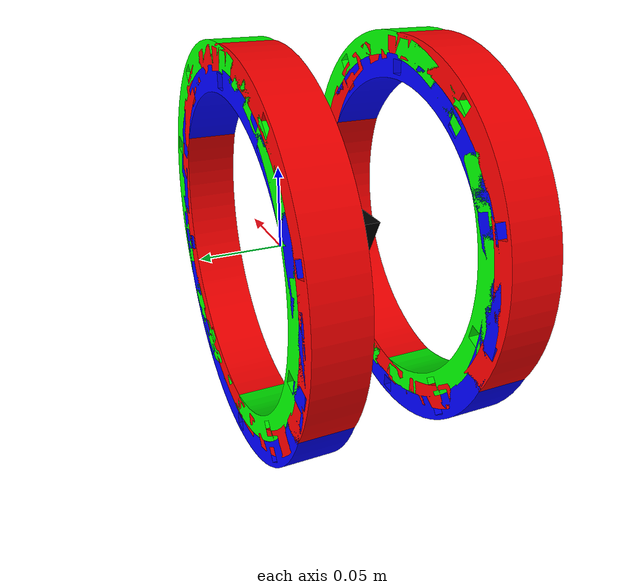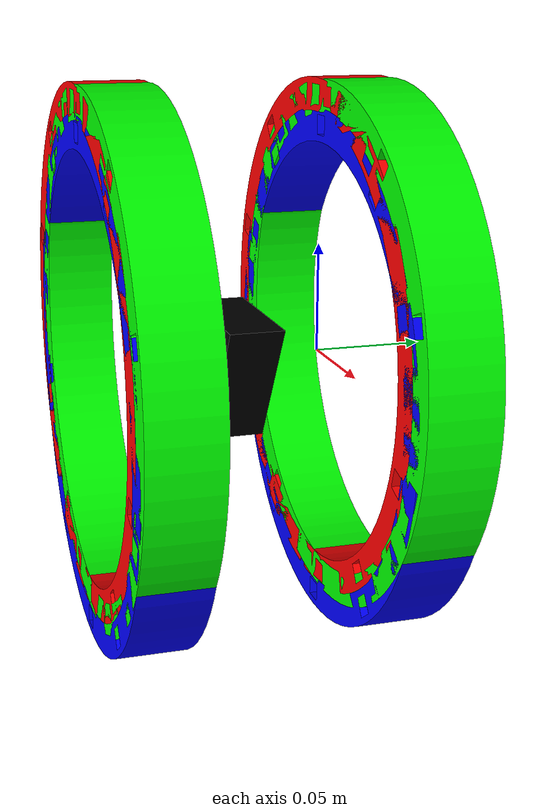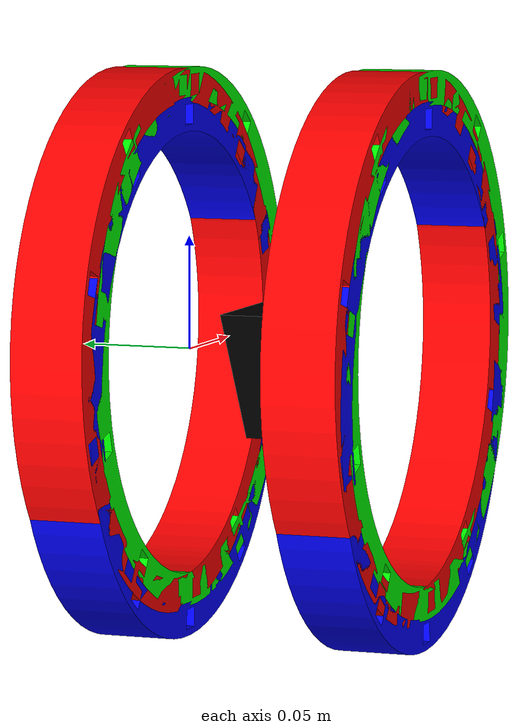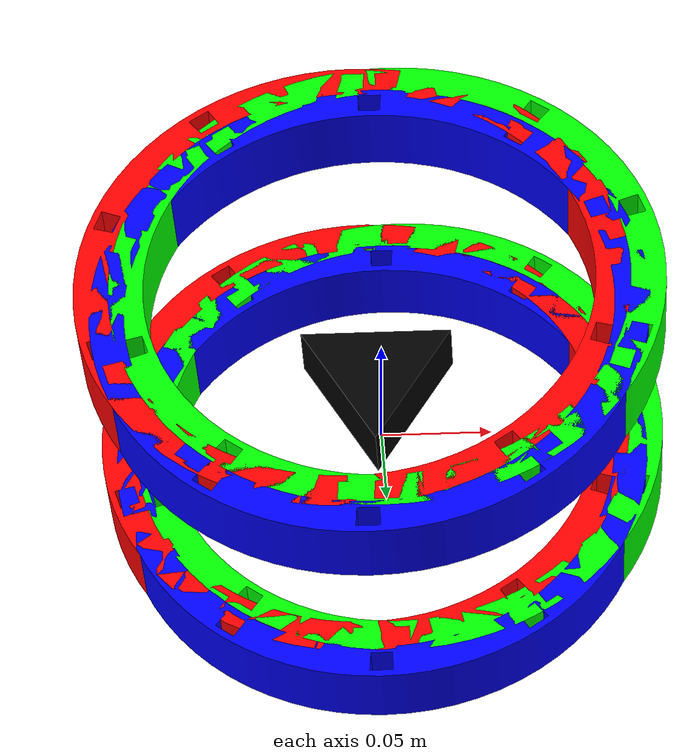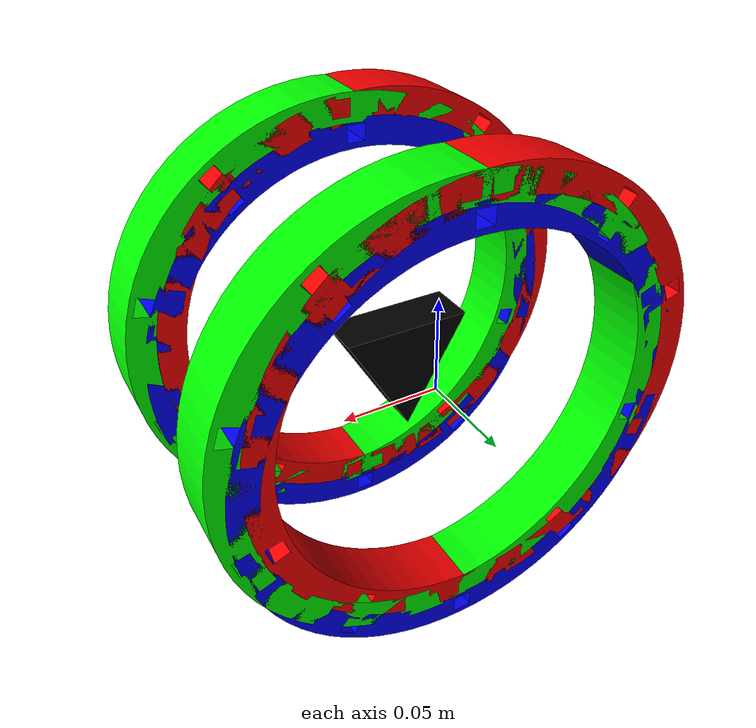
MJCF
<?xml version="1.0" ?>
<!-- Generated using onshape-to-robot -->
<!-- Onshape https://cad.onshape.com/documents/6ea4df2c2feb9d034b7d17e7/w/f7f81d80de76a46836fa4b60/e/3381f4ecc1cbedb8efeb0420 -->
<mujoco model="my-robot">
  <compiler angle="radian" meshdir="assets" autolimits="true"/>
  <default>
    <default class="my-robot">
      <joint frictionloss="0.2" armature="0.005"/>
      <default class="visual">
        <geom type="mesh" contype="0" conaffinity="0" group="2"/>
      </default>
      <default class="collision">
    <geom group="3" contype="0" conaffinity="1"/>
      </default>
    </default>
  </default>
  <worldbody>
    <!-- Link refrence -->
    <body name="refrence" pos="0 0 0" quat="1 0 0 0" childclass="my-robot">
      <freejoint name="refrence_freejoint"/>
      <inertial pos="0 0 0" mass="4.62243156" fullinertia="0.029 0.029 0.043 7.682e-5 2.262e-7 -5.775e-7"/>
      <!-- Part refrence -->
      <geom type="mesh" class="visual" pos="0.0489164 -0.0515 0.0282419" quat="1 0 0 0" mesh="refrence" material="refrence_material"/>
        <geom type="mesh" class="collision" pos="0.0489164 -0.0515 0.0282419" quat="1 0 0 0" mesh="refrence" material="refrence_material"/>
      <!-- Frame imu3 -->
      <site group="3" name="imu3" pos="-0.0025 0 -0.0862338" quat="0.707107 0 0 0.707107"/>
      <!-- Frame imu1 -->
      <site group="3" name="imu1" pos="-0.0734307 4.33681e-19 0.045282" quat="0.353553 0.612372 0.612372 0.353553"/>
      <!-- Frame imu2 -->
      <site group="3" name="imu2" pos="0.0759307 0 0.0409518" quat="0.353553 -0.612372 -0.612372 0.353553"/>
      <!-- Link fake_tread -->
      <body name="fake_tread" pos="-0.00757175 0 0.00437155" quat="0.707107 -0.707107 0 0">
        <!-- Joint from refrence to fake_tread -->
        <joint axis="0 0 1" name="rolly1" type="hinge"/>
        <inertial pos="0 0 0" mass="1e-09" fullinertia="1e-09 1e-09 1e-09 0 0 0"/>
        <!-- Part fake_tread -->
        <geom type="mesh" class="visual" pos="0.0564882 -0.0238704 0.032" quat="0.707107 0.707107 -0 -0" mesh="fake_tread" material="fake_tread_material"/>
        <geom type="mesh" class="collision" pos="0.0564882 -0.0238704 0.032" quat="0.707107 0.707107 -0 -0" mesh="fake_tread" material="fake_tread_material"/>
        <!-- Part fake_tread_2 -->
        <geom type="mesh" class="visual" pos="0.0564882 -0.0238704 -0.078" quat="0.707107 0.707107 -0 -0" mesh="fake_tread" material="fake_tread_material"/>
        <geom type="mesh" class="collision" pos="0.0564882 -0.0238704 -0.078" quat="0.707107 0.707107 -0 -0" mesh="fake_tread" material="fake_tread_material"/>
      </body>
            <!-- Link fake_tread_2 -->
      <body name="fake_tread_2" pos="0.00757175 0 0.00437155" quat="0.707107 -0.707107 0 0">
        <!-- Joint from refrence to fake_tread_2 -->
        <joint axis="0 0 1" name="rolly2" type="hinge"/>
        <inertial pos="0 0 0" mass="1e-09" fullinertia="1e-09 1e-09 1e-09 0 0 0"/>
        <!-- Part fake_tread_3 -->
        <geom type="mesh" class="visual" pos="0.0564882 -0.0238704 -0.078" quat="0.707107 0.707107 -0 -0" mesh="fake_tread" material="fake_tread_material1"/>
        <geom type="mesh" class="collision" pos="0.0564882 -0.0238704 -0.078" quat="0.707107 0.707107 -0 -0" mesh="fake_tread" material="fake_tread_material1"/>
        <!-- Part fake_tread_4 -->
        <geom type="mesh" class="visual" pos="0.0564882 -0.0238704 0.032" quat="0.707107 0.707107 -0 -0" mesh="fake_tread" material="fake_tread_material1"/>
        <geom type="mesh" class="collision" pos="0.0564882 -0.0238704 0.032" quat="0.707107 0.707107 -0 -0" mesh="fake_tread" material="fake_tread_material1"/>
      </body>
      <!-- Link fake_tread_3 -->
      <body name="fake_tread_3" pos="-4.85723e-17 0 -0.0087431" quat="0.707107 0.707107 -0 -0">
        <!-- Joint from refrence to fake_tread_3 -->
        <joint axis="0 0 -1" name="rolly3" type="hinge"/>
        <inertial pos="0 0 0" mass="1e-09" fullinertia="1e-09 1e-09 1e-09 0 0 0"/>
        <!-- Part fake_tread_5 -->
        <geom type="mesh" class="visual" pos="0.0564882 0.0238704 0.078" quat="0.707107 -0.707107 0 0" mesh="fake_tread" material="fake_tread_material2"/>
        <geom type="mesh" class="collision" pos="0.0564882 0.0238704 0.078" quat="0.707107 -0.707107 0 0" mesh="fake_tread" material="fake_tread_material2"/>
        <!-- Part fake_tread_6 -->
        <geom type="mesh" class="visual" pos="0.0564882 0.0238704 -0.032" quat="0.707107 -0.707107 0 0" mesh="fake_tread" material="fake_tread_material2"/>
        <geom type="mesh" class="collision" pos="0.0564882 0.0238704 -0.032" quat="0.707107 -0.707107 0 0" mesh="fake_tread" material="fake_tread_material2"/>
      </body>

    </body>
  </worldbody>
  <asset>
    <mesh file="refrence.stl"/>
    <mesh file="fake_tread.stl"/>
    <material name="refrence_material" rgba="0 0 0 1"/>
    <material name="fake_tread_material" rgba="1 0 0 1"/>
    <material name="fake_tread_material1" rgba="0 1 0 1"/>
    <material name="fake_tread_material2" rgba="0 0 1 1"/>

  </asset>
  <actuator>
    <velocity class="my-robot" name="rolly1" joint="rolly1" kv="1"/>
    <velocity class="my-robot" name="rolly2" joint="rolly2" kv="1"/>
    <velocity class="my-robot" name="rolly3" joint="rolly3" kv="1"/>
  </actuator>

  <sensor>
    <accelerometer name="imu1_accel" site="imu1"/>
    <accelerometer name="imu2_accel" site="imu2"/>
    <accelerometer name="imu3_accel" site="imu3"/>
    <gyro name="imu1_gyro" site="imu1"/>
    <gyro name="imu2_gyro" site="imu2"/>
    <gyro name="imu3_gyro" site="imu3"/>

  </sensor>

  <equality/>
</mujoco>
